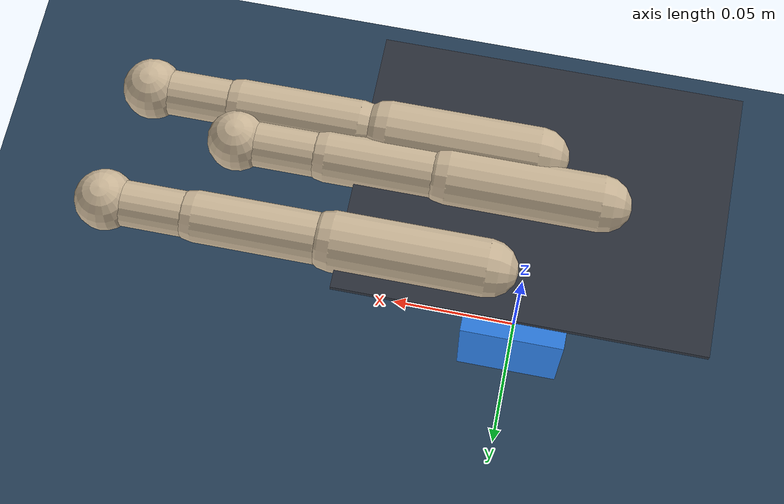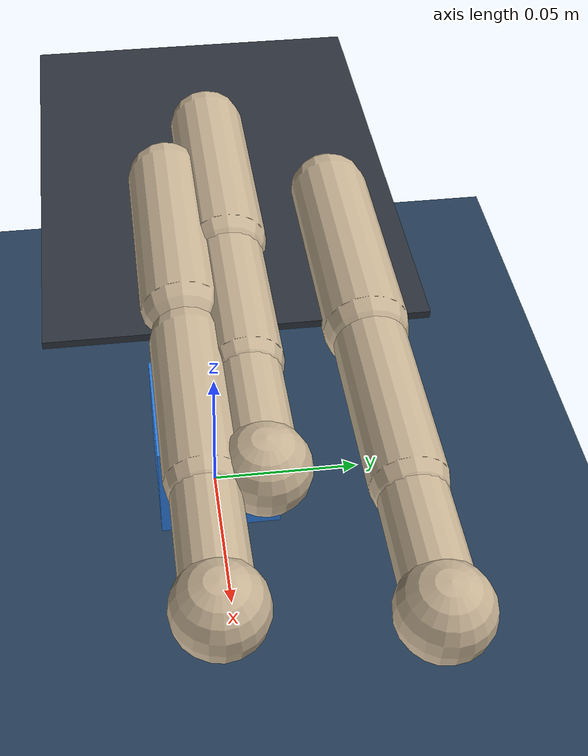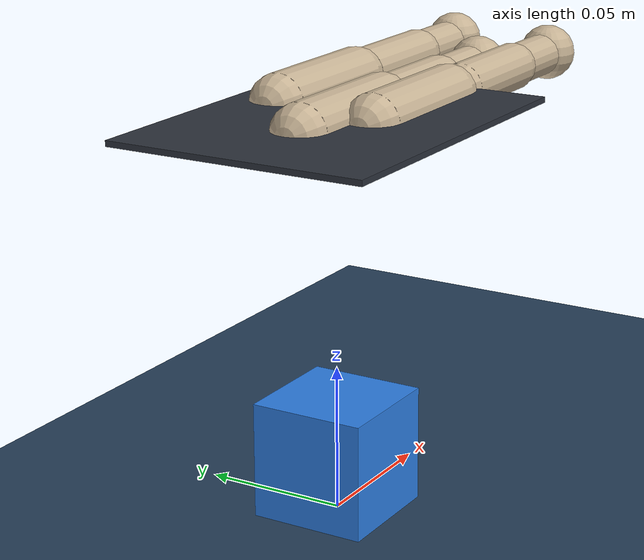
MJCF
<mujoco model="scene_cube_tp0d0104p0d0286p0d0000_ip0d0124n0d0007p0d0050_mp0d0027p0d0177p0d0094">
  <compiler angle="radian" autolimits="true" />
  <option timestep="0.002" gravity="0 0 -9.81" integrator="implicitfast" />
  <visual>
    <headlight ambient=".4 .4 .4" diffuse=".8 .8 .8" specular="0.1 0.1 0.1" />
    <map znear=".01" />
    <quality shadowsize="2048" />
    <global elevation="-15" />
  </visual>
  <default>
    <geom friction="1.8 0.15 0.01" solref="0.006 1" solimp="0.97 0.995 0.0005" />
    <motor ctrlrange="-1 1" ctrllimited="true" />
    <default class="pose">
      <joint damping="2.0" armature="0.01" />
      <position kp="4000" kv="100" forcerange="-1000 1000" />
    </default>
    <default class="ctrl">
      <joint damping="0.5" armature="0.001" />
      <position kp="30" kv="0.5" gear="1" forcerange="-10 10" ctrlrange="-1 1" />
    </default>
  </default>
  <asset>
    <texture type="skybox" builtin="gradient" rgb1="0.3 0.5 0.7" rgb2="0 0 0" width="512" height="3072" />
    <texture type="2d" name="groundplane" builtin="checker" mark="edge" rgb1="0.2 0.3 0.4" rgb2="0.1 0.2 0.3" markrgb="0.8 0.8 0.8" width="300" height="300" />
    <material name="groundplane" texture="groundplane" texuniform="true" texrepeat="5 5" reflectance="0.2" />
    <texture name="grid" type="2d" builtin="checker" rgb1="0.15 0.15 0.15" rgb2="0.25 0.25 0.25" width="256" height="256" />
    <material name="table_mat" texture="grid" texrepeat="3 3" reflectance="0.2" />
    <material name="palm_mat" rgba="0.18 0.2 0.24 1" />
    <material name="finger_mat" rgba="0.8 0.72 0.6 1" />
    <material name="object_mat" rgba="0.18 0.5 0.9 1" />
  </asset>
  <worldbody>
    <light pos="0 0 1.5" dir="0 0 -1" directional="true" diffuse=".6 .6 .6" specular=".2 .2 .2" />
    <light pos="0.5 0.5 1.0" dir="-1 -1 -1" directional="true" diffuse=".4 .4 .4" specular=".1 .1 .1" />
    <geom name="floor" type="plane" size="1.5 1.5 0.1" material="groundplane" />
    <body name="cube" pos="0.000000 0.000000 0.020000">
      <freejoint />
      <geom type="box" size="0.020000 0.020000 0.020000" density="500" material="object_mat" friction="2.4 0.2 0.02" />
    </body>
    <body gravcomp="1" name="palm_pose" pos="0 0 0.134">
      <joint class="pose" name="palm_px" type="slide" axis="1 0 0" range="-0.20 0.20" />
      <joint class="pose" name="palm_py" type="slide" axis="0 1 0" range="-0.20 0.20" />
      <joint class="pose" name="palm_pz" type="slide" axis="0 0 1" range="-0.15 0.35" />
      <joint class="pose" name="palm_rx" type="hinge" axis="1 0 0" range="-1.57 1.57" />
      <joint class="pose" name="palm_ry" type="hinge" axis="0 1 0" range="-1.57 1.57" />
      <joint class="pose" name="palm_rz" type="hinge" axis="0 0 1" range="-3.14 3.14" />
      <geom type="box" size="0.06 0.045 0.001" material="palm_mat" />
      <body name="thumb_mount" pos="-0.019595 0.000649 0">
        <inertial pos="0 0 0" mass="0.001" diaginertia="1e-6 1e-6 1e-6" />
        <body name="thumb_yaw_frame">
          <inertial pos="0 0 0" mass="0.001" diaginertia="1e-6 1e-6 1e-6" />
          <joint class="ctrl" name="thumb_yaw" type="hinge" axis="1 0 0" range="-1.1 1.1" />
          <body name="thumb_mcp_frame">
            <joint class="ctrl" name="thumb_mcp" type="hinge" axis="0 1 0" range="0 3.14" />
            <geom type="capsule" fromto="0 0 0 0.05 0 0" size="0.010" material="finger_mat" />
            <body name="thumb_len_frame" pos="0.05 0 0">
              <geom type="capsule" fromto="0 0 0 0.04 0 0" size="0.0085" material="finger_mat" />
              <body name="thumb_pip_frame" pos="0.04 0 0">
                <joint class="ctrl" name="thumb_pip" type="hinge" axis="0 1 0" range="-1.2 0.5" />
                <geom type="capsule" fromto="0 0 0 0.03 0 0" size="0.0075" material="finger_mat" />
                <body name="thumb_tip" pos="0.03 0 0">
                  <geom type="sphere" size="0.010" material="finger_mat" friction="2.4 0.2 0.02" />
                  <geom type="sphere" pos="0 0.004 0" size="0.005" material="finger_mat" friction="2.4 0.2 0.02" />
                  <geom type="sphere" pos="0 -0.004 0" size="0.005" material="finger_mat" friction="2.4 0.2 0.02" />
                </body>
              </body>
            </body>
          </body>
        </body>
      </body>
      <body name="index_mount" pos="0.012397 0.029336 0">
        <inertial pos="0 0 0" mass="0.001" diaginertia="1e-6 1e-6 1e-6" />
        <body name="index_yaw_frame">
          <inertial pos="0 0 0" mass="0.001" diaginertia="1e-6 1e-6 1e-6" />
          <joint class="ctrl" name="index_yaw" type="hinge" axis="1 0 0" range="-1.1 1.1" />
          <body name="index_mcp_frame">
            <joint class="ctrl" name="index_mcp" type="hinge" axis="0 1 0" range="0 2.5" />
            <geom type="capsule" fromto="0 0 0 0.05 0 0" size="0.010" material="finger_mat" />
            <body name="index_len_frame" pos="0.054951 0 0">
              <geom type="capsule" fromto="0 0 0 0.04 0 0" size="0.0085" material="finger_mat" />
              <body name="index_pip_frame" pos="0.04 0 0">
                <joint class="ctrl" name="index_pip" type="hinge" axis="0 1 0" range="-1.2 1.57" />
                <geom type="capsule" fromto="0 0 0 0.03 0 0" size="0.0075" material="finger_mat" />
                <body name="index_tip" pos="0.03 0 0">
                  <geom type="sphere" size="0.010" material="finger_mat" friction="2.4 0.2 0.02" />
                  <geom type="sphere" pos="0 0.004 0" size="0.005" material="finger_mat" friction="2.4 0.2 0.02" />
                  <geom type="sphere" pos="0 -0.004 0" size="0.005" material="finger_mat" friction="2.4 0.2 0.02" />
                </body>
              </body>
            </body>
          </body>
        </body>
      </body>
      <body name="middle_mount" pos="0.002746 -0.012333 0">
        <inertial pos="0 0 0" mass="0.001" diaginertia="1e-6 1e-6 1e-6" />
        <body name="middle_yaw_frame">
          <inertial pos="0 0 0" mass="0.001" diaginertia="1e-6 1e-6 1e-6" />
          <joint class="ctrl" name="middle_yaw" type="hinge" axis="1 0 0" range="-1.1 1.1" />
          <body name="middle_mcp_frame">
            <joint class="ctrl" name="middle_mcp" type="hinge" axis="0 1 0" range="0 2.5" />
            <geom type="capsule" fromto="0 0 0 0.05 0 0" size="0.010" material="finger_mat" />
            <body name="middle_len_frame" pos="0.05939 0 0">
              <geom type="capsule" fromto="0 0 0 0.04 0 0" size="0.0085" material="finger_mat" />
              <body name="middle_pip_frame" pos="0.04 0 0">
                <joint class="ctrl" name="middle_pip" type="hinge" axis="0 1 0" range="-1.2 1.57" />
                <geom type="capsule" fromto="0 0 0 0.03 0 0" size="0.0075" material="finger_mat" />
                <body name="middle_tip" pos="0.03 0 0">
                  <geom type="sphere" size="0.010" material="finger_mat" friction="2.4 0.2 0.02" />
                  <geom type="sphere" pos="0 0.004 0" size="0.005" material="finger_mat" friction="2.4 0.2 0.02" />
                  <geom type="sphere" pos="0 -0.004 0" size="0.005" material="finger_mat" friction="2.4 0.2 0.02" />
                </body>
              </body>
            </body>
          </body>
        </body>
      </body>
    </body>
  </worldbody>
  <actuator>
    <position class="pose" name="a_palm_px" joint="palm_px" ctrlrange="-0.20 0.20" />
    <position class="pose" name="a_palm_py" joint="palm_py" ctrlrange="-0.20 0.20" />
    <position class="pose" name="a_palm_pz" joint="palm_pz" ctrlrange="-0.15 0.35" />
    <position class="pose" name="a_palm_rx" joint="palm_rx" ctrlrange="-1.57 1.57" />
    <position class="pose" name="a_palm_ry" joint="palm_ry" ctrlrange="-1.57 1.57" />
    <position class="pose" name="a_palm_rz" joint="palm_rz" ctrlrange="-3.14 3.14" />
    <position class="ctrl" name="a_thumb_yaw" joint="thumb_yaw" ctrlrange="-1.1 1.1" />
    <position class="ctrl" name="a_thumb_mcp" joint="thumb_mcp" ctrlrange="0 3.14" />
    <position class="ctrl" name="a_thumb_pip" joint="thumb_pip" ctrlrange="-1.2 0.5" />
    <position class="ctrl" name="a_index_yaw" joint="index_yaw" ctrlrange="-1.1 1.1" />
    <position class="ctrl" name="a_index_mcp" joint="index_mcp" ctrlrange="0 2.5" />
    <position class="ctrl" name="a_index_pip" joint="index_pip" ctrlrange="-1.2 1.57" />
    <position class="ctrl" name="a_middle_yaw" joint="middle_yaw" ctrlrange="-1.1 1.1" />
    <position class="ctrl" name="a_middle_mcp" joint="middle_mcp" ctrlrange="0 2.5" />
    <position class="ctrl" name="a_middle_pip" joint="middle_pip" ctrlrange="-1.2 1.57" />
  </actuator>
  <keyframe>
    <key name="open" qpos="&#10;        0 0 0.02 1 0 0 0 0.02 0 0 0 0 0 0 2 -0.707 0 1.25 1 0 1.25 1&#10;      " ctrl="&#10;        0.02 0 0 0 0 0 0 2 -0.707 0 1.25 1 0 1.25 1&#10;      " />
    <key name="foundational" qpos="&#10;        0.01344848679 0.001664253778 0.02763401235 0.7552897092 0.01072758129 0.1632430836 -0.6346448376 0.02138727803 0.001240556929 0.0006776370771 0.0001553975304 -0.0001975928005 2.706494398e-05 0.2452653035 1.674355494 -1.158010531 -0.1321432173 1.313944348 1.068795166 -0.1178226359 1.366067863 1.116314733&#10;      " ctrl="&#10;        0.02 0 0 0 0 0 0.01670650338 1.41369204 -1.198818347 -0.1406929477 1.501884839 1.112227418 0.0852410028 1.463008126 1.126216331&#10;      " />
  </keyframe>
</mujoco>
